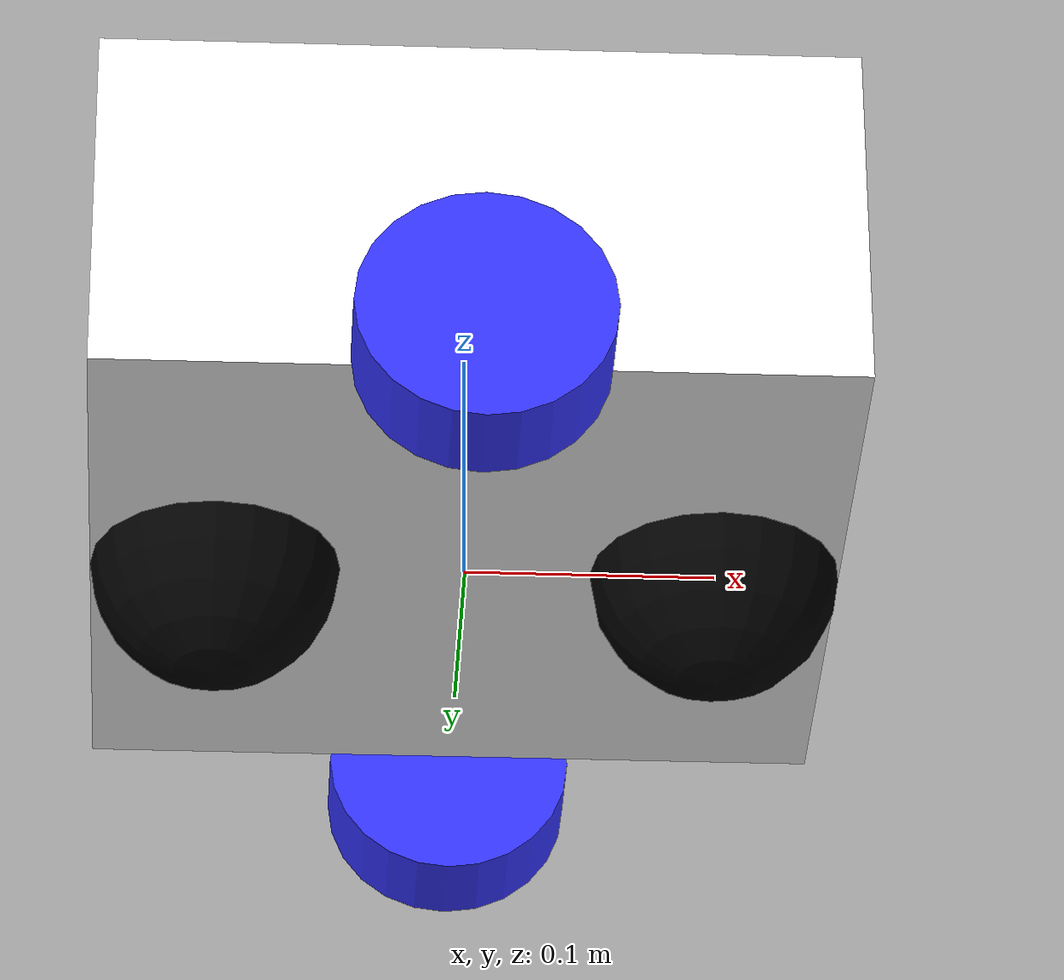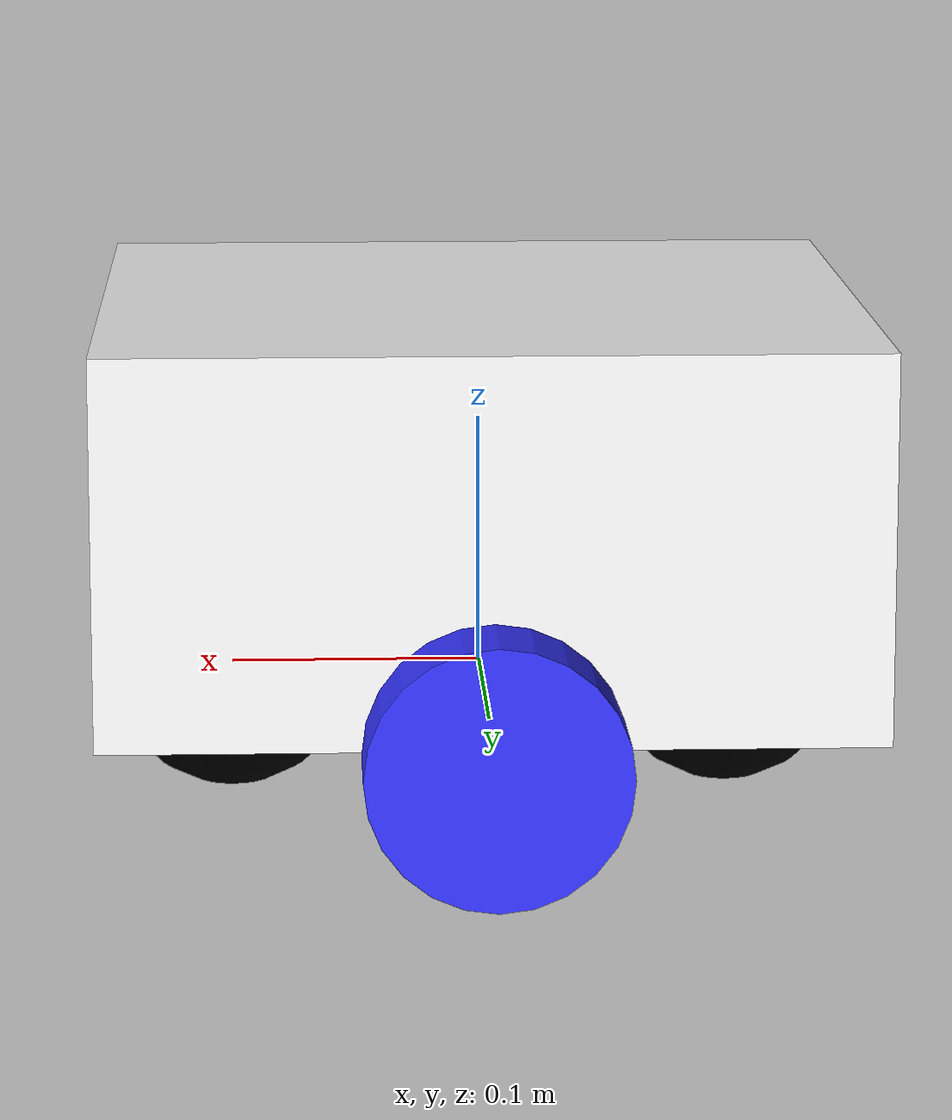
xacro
<?xml version="1.0"?>
<robot xmlns:xacro="http://www.ros.org/wiki/xacro">

    <xacro:include filename="inertial_macros.xacro"/>

    <material name="white">
        <color rgba="1 1 1 1"/>
    </material>

    <material name="orange">
        <color rgba="1 0.3 0.1 1"/>
    </material>

    <material name="blue">
        <color rgba="0.2 0.2 1 1"/>
    </material>

    <material name="black">
        <color rgba="0 0 0 1"/>
    </material>

    <!-- BASE LINK -->

    <link name="base_link">

    </link>

    <!-- CHASSIS LINK -->

    <joint name="chassis_joint" type="fixed">
        <parent link="base_link"/>
        <child link="chassis"/>
        <origin xyz="-0.15 0 0"/>
    </joint>

    <link name="chassis">
        <visual>
            <origin xyz="0.15 0 0.075"/>
            <geometry>
                <box size="0.3 0.3 0.15"/>
            </geometry>
            <material name ="white"/>
        </visual>
        <collision>
            <origin xyz="0.15 0 0.075"/>
            <geometry>
                <box size="0.3 0.3 0.15"/>
            </geometry>
        </collision>
        <xacro:inertial_box mass="0.5" x="0.3" y="0.3" z="0.15">
            <origin xyz="0.15 0 0.075" rpy="0 0 0"/>
        </xacro:inertial_box>
    </link>

    <gazebo reference="chassis">
        <material>Gazebo/White</material>
    </gazebo>

    <!-- LEFT WHEEL LINK -->
    <joint name="left_wheel_joint" type="continuous">
        <parent link="base_link"/>
        <child link="left_wheel"/>
        <origin xyz="0 0.175 0" rpy="-${pi/2} 0 0"/>
        <axis xyz="0 0 1"/>
    </joint>

    <link name="left_wheel">
        <visual>
            <geometry>
                <cylinder radius="0.05" length="0.04"/>
            </geometry>
            <material name="blue"/>
        </visual>
        <collision>
            <geometry>
                <cylinder radius="0.05" length="0.04"/>
            </geometry>
        </collision>
        <xacro:inertial_cylinder mass="0.1" length="0.04" radius="0.05">
            <origin xyz="0 0 0 " rpy="0 0 0"/>
        </xacro:inertial_cylinder>
    </link>
    <gazebo reference="left_wheel">
        <material>Gazebo/Blue</material>
    </gazebo>

    <!-- RIGHT WHEEL LINK -->
    <joint name="right_wheel_joint" type="continuous">
        <parent link="base_link"/>
        <child link="right_wheel"/>
        <origin xyz="0 -0.175 0" rpy="${pi/2} 0 0"/>
        <axis xyz="0 0 -1"/>
    </joint>

    <link name="right_wheel">
        <visual>
            <geometry>
                <cylinder radius="0.05" length="0.04"/>
            </geometry>
            <material name="blue"/>
        </visual>
        <collision>
            <geometry>
                <cylinder radius="0.05" length="0.04"/>
            </geometry>
        </collision>
        <xacro:inertial_cylinder mass="0.1" length="0.04" radius="0.05">
            <origin xyz="0 0 0 " rpy="0 0 0"/>
        </xacro:inertial_cylinder>
    </link>
    <gazebo reference="right_wheel">
        <material>Gazebo/Blue</material>
    </gazebo>

    <!-- CASTER WHEEL FRONT LINK -->

    <joint name="caster_wheel_front_joint" type="fixed">
        <parent link="base_link"/>
        <child link="caster_wheel_front"/>
        <origin xyz="0.1 0 0"/>
    </joint>

    <link name="caster_wheel_front">
        <visual>
            <geometry>
                <sphere radius="0.05"/>
            </geometry>
            <material name="black"/>
        </visual>
        <collision>
            <geometry>
                <sphere radius="0.05"/>
            </geometry>
        </collision>
        <xacro:inertial_sphere mass="0.1" radius="0.05">
            <origin xyz="0 0 0" rpy="0 0 0"/>
        </xacro:inertial_sphere>
    </link>

    <gazebo reference="caster_wheel_front">
        <material>Gazebo/Black</material>
        <mu1 value="0.001"/>
        <mu2 value="0.001"/>
    </gazebo>

    <!-- CASTER WHEEL BACK LINK -->

    <joint name="caster_wheel_back_joint" type="fixed">
        <parent link="base_link"/>
        <child link="caster_wheel_back"/>
        <origin xyz="-0.1 0 0"/>
    </joint>

    <link name="caster_wheel_back">
        <visual>
            <geometry>
                <sphere radius="0.05"/>
            </geometry>
            <material name="black"/>
        </visual>
        <collision>
            <geometry>
                <sphere radius="0.05"/>
            </geometry>
        </collision>
        <xacro:inertial_sphere mass="0.1" radius="0.05">
            <origin xyz="0 0 0" rpy="0 0 0"/>
        </xacro:inertial_sphere>
    </link>

    <gazebo reference="caster_wheel_back">
        <material>Gazebo/Black</material>
        <mu1 value="0.001"/>
        <mu2 value="0.001"/>
    </gazebo>

</robot>

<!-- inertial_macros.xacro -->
<robot xmlns:xacro="http://www.ros.org/wiki/xacro" >

    <!-- Specify some standard inertial calculations https://en.wikipedia.org/wiki/List_of_moments_of_inertia -->
    <!-- These make use of xacro's mathematical functionality -->

    <xacro:macro name="inertial_sphere" params="mass radius *origin">
        <inertial>
            <xacro:insert_block name="origin"/>
            <mass value="${mass}" />
            <inertia ixx="${(2/5) * mass * (radius*radius)}" ixy="0.0" ixz="0.0"
                    iyy="${(2/5) * mass * (radius*radius)}" iyz="0.0"
                    izz="${(2/5) * mass * (radius*radius)}" />
        </inertial>
    </xacro:macro>

    <xacro:macro name="inertial_box" params="mass x y z *origin">
        <inertial>
            <xacro:insert_block name="origin"/>
            <mass value="${mass}" />
            <inertia ixx="${(1/12) * mass * (y*y+z*z)}" ixy="0.0" ixz="0.0"
                    iyy="${(1/12) * mass * (x*x+z*z)}" iyz="0.0"
                    izz="${(1/12) * mass * (x*x+y*y)}" />
        </inertial>
    </xacro:macro>

    <xacro:macro name="inertial_cylinder" params="mass length radius *origin">
        <inertial>
            <xacro:insert_block name="origin"/>
            <mass value="${mass}" />
            <inertia ixx="${(1/12) * mass * (3*radius*radius + length*length)}" ixy="0.0" ixz="0.0"
                    iyy="${(1/12) * mass * (3*radius*radius + length*length)}" iyz="0.0"
                    izz="${(1/2) * mass * (radius*radius)}" />
        </inertial>
    </xacro:macro>

    <xacro:macro name="inertial_doughnut" params="mass x y z *origin">
        <inertial>
            <xacro:insert_block name="origin"/>
            <mass value="${mass}" />
            <inertia ixx="${(1/12) * mass * (y*y + z*z)}" ixy="0.0" ixz="0.0"
                    iyy="${(1/12) * mass * (x*x + z*z)}" iyz="0.0"
                    izz="${(1/12) * mass * (x*x + y*y)}" />
        </inertial>
    </xacro:macro>

</robot>
